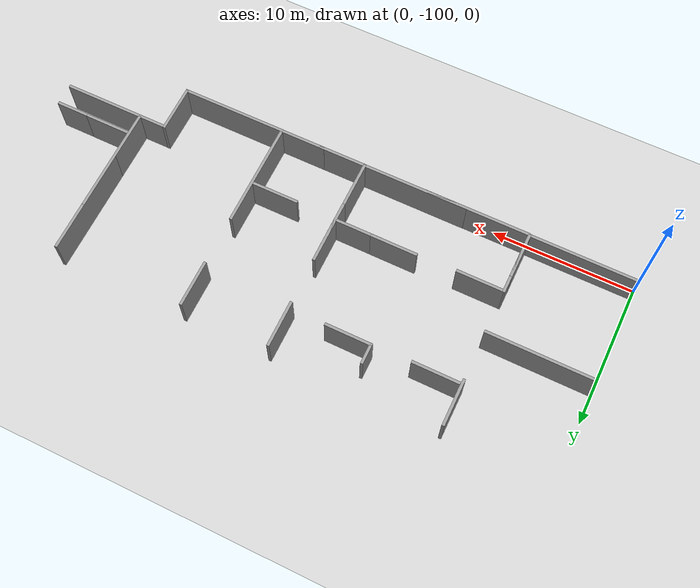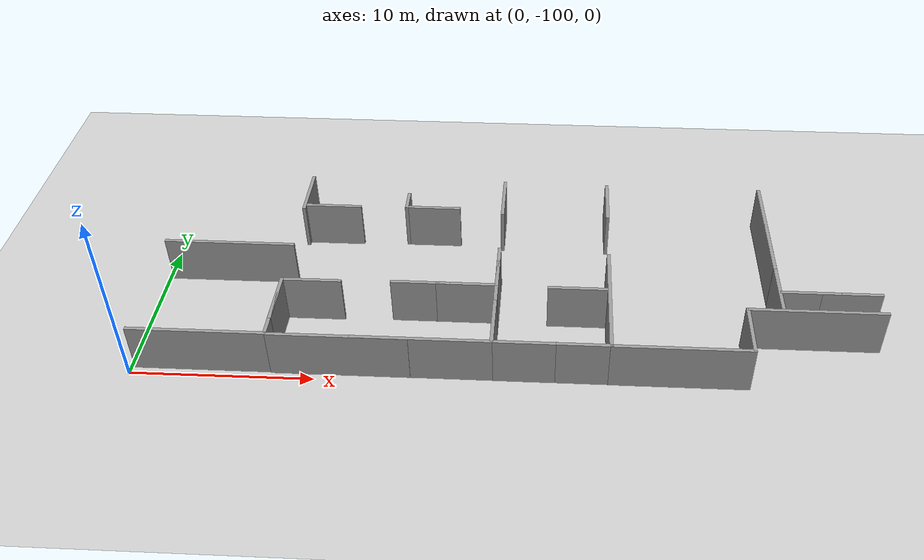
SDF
<sdf version="1.7">
 <world name="default">
  <model name="ground_plane">
   <static>1</static>
   <link name="link">
    <collision name="collision">
     <geometry><plane><normal>0 0 1</normal><size>100 100</size></plane></geometry>
     <surface>
      <contact><collide_bitmask>65535</collide_bitmask></contact>
      <friction><ode><mu>100</mu><mu2>50</mu2></ode></friction>
     </surface>
    </collision>
    <visual name="visual">
     <cast_shadows>0</cast_shadows>
     <geometry><plane><normal>0 0 1</normal><size>100 100</size></plane></geometry>
     <material>
      <script><uri>file://media/materials/scripts/gazebo.material</uri><name>Gazebo/Grey</name></script>
     </material>
    </visual>
   </link>
  </model>
  <model name="grey_wall_clone_1_clone_2_clone_clone_clone_clone_clone_clone_clone_3_clone_0_clone_0_clone_5_clone_2_clone_2_clone_clone_21_clone_clone_0_clone">
   <static>1</static>
   <link name="link">
    <pose>0 0 1.4 0 -0 0</pose>
    <collision name="collision"><geometry><box><size>7.5 0.2 2.8</size></box></geometry></collision>
    <visual name="visual">
     <cast_shadows>0</cast_shadows>
     <geometry><box><size>7.5 0.2 2.8</size></box></geometry>
     <material>
      <script>
       <uri>model://grey_wall/materials/scripts</uri>
       <uri>model://grey_wall/materials/textures</uri>
       <name>vrc/grey_wall</name>
      </script>
     </material>
    </visual>
   </link>
   <pose>3.92143 -92.0756 0 0 -0 0</pose>
  </model>
  <model name="fixed_half_clone_8_clone_clone_6_clone_0">
   <link name="link">
    <pose>0 0 1.4 0 -0 0</pose>
    <inertial>
     <mass>1</mass>
     <inertia><ixx>1</ixx><ixy>0</ixy><ixz>0</ixz><iyy>1</iyy><iyz>0</iyz><izz>1</izz></inertia>
    </inertial>
    <visual name="visual">
     <cast_shadows>0</cast_shadows>
     <geometry><box><size>3.3 0.2 2.8</size></box></geometry>
     <material>
      <script>
       <uri>model://grey_wall/materials/scripts</uri>
       <uri>model://grey_wall/materials/textures</uri>
       <name>vrc/grey_wall</name>
      </script>
      <shader type="pixel"><normal_map>__default__</normal_map></shader>
      <ambient>1 1 1 1</ambient>
      <diffuse>1 1 1 1</diffuse>
      <specular>0 0 0 1</specular>
      <emissive>0 0 0 1</emissive>
     </material>
    </visual>
    <collision name="collision">
     <geometry><box><size>3.3 0.2 2.8</size></box></geometry>
     <surface>
      <friction>
       <ode><mu>1</mu><mu2>1</mu2><fdir1>0 0 0</fdir1><slip1>0</slip1><slip2>0</slip2></ode>
       <torsional>
        <coefficient>1</coefficient>
        <patch_radius>0</patch_radius>
        <surface_radius>0</surface_radius>
        <use_patch_radius>1</use_patch_radius>
        <ode><slip>0</slip></ode>
       </torsional>
      </friction>
      <bounce><restitution_coefficient>0</restitution_coefficient><threshold>1e+06</threshold></bounce>
      <contact>
       <collide_without_contact>0</collide_without_contact>
       <collide_without_contact_bitmask>1</collide_without_contact_bitmask>
       <collide_bitmask>1</collide_bitmask>
       <ode>
        <soft_cfm>0</soft_cfm>
        <soft_erp>0.2</soft_erp>
        <kp>1e+13</kp>
        <kd>1</kd>
        <max_vel>0.01</max_vel>
        <min_depth>0</min_depth>
       </ode>
       <bullet>
        <split_impulse>1</split_impulse>
        <split_impulse_penetration_threshold>-0.01</split_impulse_penetration_threshold>
        <soft_cfm>0</soft_cfm>
        <soft_erp>0.2</soft_erp>
        <kp>1e+13</kp>
        <kd>1</kd>
       </bullet>
      </contact>
     </surface>
    </collision>
   </link>
   <static>1</static>
   <pose>7.55388 -86.9849 0 0 0 -1.5708</pose>
  </model>
  <model name="grey_wall_clone_1_clone_2_clone_clone_clone_clone_clone_clone_clone_3_clone_0_clone_0_clone_5_clone_2_clone_2_clone_clone_21_clone_clone_clone_0_clone">
   <static>1</static>
   <link name="link">
    <pose>0 0 1.4 0 -0 0</pose>
    <collision name="collision"><geometry><box><size>7.5 0.2 2.8</size></box></geometry></collision>
    <visual name="visual">
     <cast_shadows>0</cast_shadows>
     <geometry><box><size>7.5 0.2 2.8</size></box></geometry>
     <material>
      <script>
       <uri>model://grey_wall/materials/scripts</uri>
       <uri>model://grey_wall/materials/textures</uri>
       <name>vrc/grey_wall</name>
      </script>
     </material>
    </visual>
   </link>
   <pose>3.93439 -99.4849 0 0 -0 0</pose>
  </model>
  <model name="fixed_half_clone_8_clone_clone_6_clone_0_clone_0">
   <link name="link">
    <pose>0 0 1.4 0 -0 0</pose>
    <inertial>
     <mass>1</mass>
     <inertia><ixx>1</ixx><ixy>0</ixy><ixz>0</ixz><iyy>1</iyy><iyz>0</iyz><izz>1</izz></inertia>
    </inertial>
    <visual name="visual">
     <cast_shadows>0</cast_shadows>
     <geometry><box><size>3.3 0.2 2.8</size></box></geometry>
     <material>
      <script>
       <uri>model://grey_wall/materials/scripts</uri>
       <uri>model://grey_wall/materials/textures</uri>
       <name>vrc/grey_wall</name>
      </script>
      <shader type="pixel"><normal_map>__default__</normal_map></shader>
      <ambient>1 1 1 1</ambient>
      <diffuse>1 1 1 1</diffuse>
      <specular>0 0 0 1</specular>
      <emissive>0 0 0 1</emissive>
     </material>
    </visual>
    <collision name="collision">
     <geometry><box><size>3.3 0.2 2.8</size></box></geometry>
     <surface>
      <friction>
       <ode><mu>1</mu><mu2>1</mu2><fdir1>0 0 0</fdir1><slip1>0</slip1><slip2>0</slip2></ode>
       <torsional>
        <coefficient>1</coefficient>
        <patch_radius>0</patch_radius>
        <surface_radius>0</surface_radius>
        <use_patch_radius>1</use_patch_radius>
        <ode><slip>0</slip></ode>
       </torsional>
      </friction>
      <bounce><restitution_coefficient>0</restitution_coefficient><threshold>1e+06</threshold></bounce>
      <contact>
       <collide_without_contact>0</collide_without_contact>
       <collide_without_contact_bitmask>1</collide_without_contact_bitmask>
       <collide_bitmask>1</collide_bitmask>
       <ode>
        <soft_cfm>0</soft_cfm>
        <soft_erp>0.2</soft_erp>
        <kp>1e+13</kp>
        <kd>1</kd>
        <max_vel>0.01</max_vel>
        <min_depth>0</min_depth>
       </ode>
       <bullet>
        <split_impulse>1</split_impulse>
        <split_impulse_penetration_threshold>-0.01</split_impulse_penetration_threshold>
        <soft_cfm>0</soft_cfm>
        <soft_erp>0.2</soft_erp>
        <kp>1e+13</kp>
        <kd>1</kd>
       </bullet>
      </contact>
     </surface>
    </collision>
   </link>
   <static>1</static>
   <pose>7.5905 -97.9003 0 0 0 -1.5708</pose>
  </model>
  <model name="fixed_half_clone_8_clone_clone_6_clone_0_clone_1">
   <link name="link">
    <pose>0 0 1.4 0 -0 0</pose>
    <inertial>
     <mass>1</mass>
     <inertia><ixx>1</ixx><ixy>0</ixy><ixz>0</ixz><iyy>1</iyy><iyz>0</iyz><izz>1</izz></inertia>
    </inertial>
    <visual name="visual">
     <cast_shadows>0</cast_shadows>
     <geometry><box><size>3.3 0.2 2.8</size></box></geometry>
     <material>
      <script>
       <uri>model://grey_wall/materials/scripts</uri>
       <uri>model://grey_wall/materials/textures</uri>
       <name>vrc/grey_wall</name>
      </script>
      <shader type="pixel"><normal_map>__default__</normal_map></shader>
      <ambient>1 1 1 1</ambient>
      <diffuse>1 1 1 1</diffuse>
      <specular>0 0 0 1</specular>
      <emissive>0 0 0 1</emissive>
     </material>
    </visual>
    <collision name="collision">
     <geometry><box><size>3.3 0.2 2.8</size></box></geometry>
     <surface>
      <friction>
       <ode><mu>1</mu><mu2>1</mu2><fdir1>0 0 0</fdir1><slip1>0</slip1><slip2>0</slip2></ode>
       <torsional>
        <coefficient>1</coefficient>
        <patch_radius>0</patch_radius>
        <surface_radius>0</surface_radius>
        <use_patch_radius>1</use_patch_radius>
        <ode><slip>0</slip></ode>
       </torsional>
      </friction>
      <bounce><restitution_coefficient>0</restitution_coefficient><threshold>1e+06</threshold></bounce>
      <contact>
       <collide_without_contact>0</collide_without_contact>
       <collide_without_contact_bitmask>1</collide_without_contact_bitmask>
       <collide_bitmask>1</collide_bitmask>
       <ode>
        <soft_cfm>0</soft_cfm>
        <soft_erp>0.2</soft_erp>
        <kp>1e+13</kp>
        <kd>1</kd>
        <max_vel>0.01</max_vel>
        <min_depth>0</min_depth>
       </ode>
       <bullet>
        <split_impulse>1</split_impulse>
        <split_impulse_penetration_threshold>-0.01</split_impulse_penetration_threshold>
        <soft_cfm>0</soft_cfm>
        <soft_erp>0.2</soft_erp>
        <kp>1e+13</kp>
        <kd>1</kd>
       </bullet>
      </contact>
     </surface>
    </collision>
   </link>
   <static>1</static>
   <pose>7.59338 -96.6883 0 0 0 -1.5708</pose>
  </model>
  <model name="fixed_half_clone_8_clone_clone_6_clone_0_clone_clone">
   <link name="link">
    <pose>0 0 1.4 0 -0 0</pose>
    <inertial>
     <mass>1</mass>
     <inertia><ixx>1</ixx><ixy>0</ixy><ixz>0</ixz><iyy>1</iyy><iyz>0</iyz><izz>1</izz></inertia>
    </inertial>
    <visual name="visual">
     <cast_shadows>0</cast_shadows>
     <geometry><box><size>3.3 0.2 2.8</size></box></geometry>
     <material>
      <script>
       <uri>model://grey_wall/materials/scripts</uri>
       <uri>model://grey_wall/materials/textures</uri>
       <name>vrc/grey_wall</name>
      </script>
      <shader type="pixel"><normal_map>__default__</normal_map></shader>
      <ambient>1 1 1 1</ambient>
      <diffuse>1 1 1 1</diffuse>
      <specular>0 0 0 1</specular>
      <emissive>0 0 0 1</emissive>
     </material>
    </visual>
    <collision name="collision">
     <geometry><box><size>3.3 0.2 2.8</size></box></geometry>
     <surface>
      <friction>
       <ode><mu>1</mu><mu2>1</mu2><fdir1>0 0 0</fdir1><slip1>0</slip1><slip2>0</slip2></ode>
       <torsional>
        <coefficient>1</coefficient>
        <patch_radius>0</patch_radius>
        <surface_radius>0</surface_radius>
        <use_patch_radius>1</use_patch_radius>
        <ode><slip>0</slip></ode>
       </torsional>
      </friction>
      <bounce><restitution_coefficient>0</restitution_coefficient><threshold>1e+06</threshold></bounce>
      <contact>
       <collide_without_contact>0</collide_without_contact>
       <collide_without_contact_bitmask>1</collide_without_contact_bitmask>
       <collide_bitmask>1</collide_bitmask>
       <ode>
        <soft_cfm>0</soft_cfm>
        <soft_erp>0.2</soft_erp>
        <kp>1e+13</kp>
        <kd>1</kd>
        <max_vel>0.01</max_vel>
        <min_depth>0</min_depth>
       </ode>
       <bullet>
        <split_impulse>1</split_impulse>
        <split_impulse_penetration_threshold>-0.01</split_impulse_penetration_threshold>
        <soft_cfm>0</soft_cfm>
        <soft_erp>0.2</soft_erp>
        <kp>1e+13</kp>
        <kd>1</kd>
       </bullet>
      </contact>
     </surface>
    </collision>
   </link>
   <static>1</static>
   <pose>9.30921 -88.2627 0 0 -0 3.14159</pose>
  </model>
  <model name="half_wall_clone_0_clone_clone_clone_6_clone_clone_clone_0">
   <link name="link">
    <pose>0 0 1.4 0 -0 0</pose>
    <inertial>
     <mass>1</mass>
     <inertia><ixx>1</ixx><ixy>0</ixy><ixz>0</ixz><iyy>1</iyy><iyz>0</iyz><izz>1</izz></inertia>
    </inertial>
    <visual name="visual">
     <cast_shadows>0</cast_shadows>
     <geometry><box><size>1.5 0.2 2.8</size></box></geometry>
     <material>
      <script>
       <uri>model://grey_wall/materials/scripts</uri>
       <uri>model://grey_wall/materials/textures</uri>
       <name>vrc/grey_wall</name>
      </script>
      <shader type="pixel"><normal_map>__default__</normal_map></shader>
      <ambient>1 1 1 1</ambient>
      <diffuse>1 1 1 1</diffuse>
      <specular>0 0 0 1</specular>
      <emissive>0 0 0 1</emissive>
     </material>
    </visual>
    <collision name="collision">
     <geometry><box><size>1.5 0.2 2.8</size></box></geometry>
     <surface>
      <friction>
       <ode><mu>1</mu><mu2>1</mu2><fdir1>0 0 0</fdir1><slip1>0</slip1><slip2>0</slip2></ode>
       <torsional>
        <coefficient>1</coefficient>
        <patch_radius>0</patch_radius>
        <surface_radius>0</surface_radius>
        <use_patch_radius>1</use_patch_radius>
        <ode><slip>0</slip></ode>
       </torsional>
      </friction>
      <bounce><restitution_coefficient>0</restitution_coefficient><threshold>1e+06</threshold></bounce>
      <contact>
       <collide_without_contact>0</collide_without_contact>
       <collide_without_contact_bitmask>1</collide_without_contact_bitmask>
       <collide_bitmask>1</collide_bitmask>
       <ode>
        <soft_cfm>0</soft_cfm>
        <soft_erp>0.2</soft_erp>
        <kp>1e+13</kp>
        <kd>1</kd>
        <max_vel>0.01</max_vel>
        <min_depth>0</min_depth>
       </ode>
       <bullet>
        <split_impulse>1</split_impulse>
        <split_impulse_penetration_threshold>-0.01</split_impulse_penetration_threshold>
        <soft_cfm>0</soft_cfm>
        <soft_erp>0.2</soft_erp>
        <kp>1e+13</kp>
        <kd>1</kd>
       </bullet>
      </contact>
     </surface>
    </collision>
   </link>
   <static>1</static>
   <pose>13.6792 -87.5259 0 0 0 -1.5708</pose>
  </model>
  <model name="fixed_half_clone_8_clone_clone_6_clone_0_clone_clone_clone">
   <link name="link">
    <pose>0 0 1.4 0 -0 0</pose>
    <inertial>
     <mass>1</mass>
     <inertia><ixx>1</ixx><ixy>0</ixy><ixz>0</ixz><iyy>1</iyy><iyz>0</iyz><izz>1</izz></inertia>
    </inertial>
    <visual name="visual">
     <cast_shadows>0</cast_shadows>
     <geometry><box><size>3.3 0.2 2.8</size></box></geometry>
     <material>
      <script>
       <uri>model://grey_wall/materials/scripts</uri>
       <uri>model://grey_wall/materials/textures</uri>
       <name>vrc/grey_wall</name>
      </script>
      <shader type="pixel"><normal_map>__default__</normal_map></shader>
      <ambient>1 1 1 1</ambient>
      <diffuse>1 1 1 1</diffuse>
      <specular>0 0 0 1</specular>
      <emissive>0 0 0 1</emissive>
     </material>
    </visual>
    <collision name="collision">
     <geometry><box><size>3.3 0.2 2.8</size></box></geometry>
     <surface>
      <friction>
       <ode><mu>1</mu><mu2>1</mu2><fdir1>0 0 0</fdir1><slip1>0</slip1><slip2>0</slip2></ode>
       <torsional>
        <coefficient>1</coefficient>
        <patch_radius>0</patch_radius>
        <surface_radius>0</surface_radius>
        <use_patch_radius>1</use_patch_radius>
        <ode><slip>0</slip></ode>
       </torsional>
      </friction>
      <bounce><restitution_coefficient>0</restitution_coefficient><threshold>1e+06</threshold></bounce>
      <contact>
       <collide_without_contact>0</collide_without_contact>
       <collide_without_contact_bitmask>1</collide_without_contact_bitmask>
       <collide_bitmask>1</collide_bitmask>
       <ode>
        <soft_cfm>0</soft_cfm>
        <soft_erp>0.2</soft_erp>
        <kp>1e+13</kp>
        <kd>1</kd>
        <max_vel>0.01</max_vel>
        <min_depth>0</min_depth>
       </ode>
       <bullet>
        <split_impulse>1</split_impulse>
        <split_impulse_penetration_threshold>-0.01</split_impulse_penetration_threshold>
        <soft_cfm>0</soft_cfm>
        <soft_erp>0.2</soft_erp>
        <kp>1e+13</kp>
        <kd>1</kd>
       </bullet>
      </contact>
     </surface>
    </collision>
   </link>
   <static>1</static>
   <pose>15.2382 -88.1728 0 0 -0 3.14159</pose>
  </model>
  <model name="grey_wall_clone_1_clone_2_clone_clone_clone_clone_clone_clone_clone_3_clone_0_clone_0_clone_5_clone_2_clone_2_clone_clone_21_clone_clone_clone_0_clone_clone">
   <static>1</static>
   <link name="link">
    <pose>0 0 1.4 0 -0 0</pose>
    <collision name="collision"><geometry><box><size>7.5 0.2 2.8</size></box></geometry></collision>
    <visual name="visual">
     <cast_shadows>0</cast_shadows>
     <geometry><box><size>7.5 0.2 2.8</size></box></geometry>
     <material>
      <script>
       <uri>model://grey_wall/materials/scripts</uri>
       <uri>model://grey_wall/materials/textures</uri>
       <name>vrc/grey_wall</name>
      </script>
     </material>
    </visual>
   </link>
   <pose>11.3502 -99.5264 0 0 -0 0</pose>
  </model>
  <model name="grey_wall_clone_1_clone_2_clone_clone_clone_clone_clone_clone_clone_3_clone_0_clone_0_clone_5_clone_2_clone_2_clone_clone_21_clone_clone_clone_0_clone_clone_0">
   <static>1</static>
   <link name="link">
    <pose>0 0 1.4 0 -0 0</pose>
    <collision name="collision"><geometry><box><size>7.5 0.2 2.8</size></box></geometry></collision>
    <visual name="visual">
     <cast_shadows>0</cast_shadows>
     <geometry><box><size>7.5 0.2 2.8</size></box></geometry>
     <material>
      <script>
       <uri>model://grey_wall/materials/scripts</uri>
       <uri>model://grey_wall/materials/textures</uri>
       <name>vrc/grey_wall</name>
      </script>
     </material>
    </visual>
   </link>
   <pose>15.7823 -99.5173 0 0 -0 0</pose>
  </model>
  <model name="fixed_half_clone_8_clone_clone_6_clone_0_clone_clone_clone_0">
   <link name="link">
    <pose>0 0 1.4 0 -0 0</pose>
    <inertial>
     <mass>1</mass>
     <inertia><ixx>1</ixx><ixy>0</ixy><ixz>0</ixz><iyy>1</iyy><iyz>0</iyz><izz>1</izz></inertia>
    </inertial>
    <visual name="visual">
     <cast_shadows>0</cast_shadows>
     <geometry><box><size>3.3 0.2 2.8</size></box></geometry>
     <material>
      <script>
       <uri>model://grey_wall/materials/scripts</uri>
       <uri>model://grey_wall/materials/textures</uri>
       <name>vrc/grey_wall</name>
      </script>
      <shader type="pixel"><normal_map>__default__</normal_map></shader>
      <ambient>1 1 1 1</ambient>
      <diffuse>1 1 1 1</diffuse>
      <specular>0 0 0 1</specular>
      <emissive>0 0 0 1</emissive>
     </material>
    </visual>
    <collision name="collision">
     <geometry><box><size>3.3 0.2 2.8</size></box></geometry>
     <surface>
      <friction>
       <ode><mu>1</mu><mu2>1</mu2><fdir1>0 0 0</fdir1><slip1>0</slip1><slip2>0</slip2></ode>
       <torsional>
        <coefficient>1</coefficient>
        <patch_radius>0</patch_radius>
        <surface_radius>0</surface_radius>
        <use_patch_radius>1</use_patch_radius>
        <ode><slip>0</slip></ode>
       </torsional>
      </friction>
      <bounce><restitution_coefficient>0</restitution_coefficient><threshold>1e+06</threshold></bounce>
      <contact>
       <collide_without_contact>0</collide_without_contact>
       <collide_without_contact_bitmask>1</collide_without_contact_bitmask>
       <collide_bitmask>1</collide_bitmask>
       <ode>
        <soft_cfm>0</soft_cfm>
        <soft_erp>0.2</soft_erp>
        <kp>1e+13</kp>
        <kd>1</kd>
        <max_vel>0.01</max_vel>
        <min_depth>0</min_depth>
       </ode>
       <bullet>
        <split_impulse>1</split_impulse>
        <split_impulse_penetration_threshold>-0.01</split_impulse_penetration_threshold>
        <soft_cfm>0</soft_cfm>
        <soft_erp>0.2</soft_erp>
        <kp>1e+13</kp>
        <kd>1</kd>
       </bullet>
      </contact>
     </surface>
    </collision>
   </link>
   <static>1</static>
   <pose>9.25178 -95.1293 0 0 -0 3.14159</pose>
  </model>
  <model name="fixed_half_clone_8_clone_clone_6_clone_0_clone_clone_clone_1">
   <link name="link">
    <pose>0 0 1.4 0 -0 0</pose>
    <inertial>
     <mass>1</mass>
     <inertia><ixx>1</ixx><ixy>0</ixy><ixz>0</ixz><iyy>1</iyy><iyz>0</iyz><izz>1</izz></inertia>
    </inertial>
    <visual name="visual">
     <cast_shadows>0</cast_shadows>
     <geometry><box><size>3.3 0.2 2.8</size></box></geometry>
     <material>
      <script>
       <uri>model://grey_wall/materials/scripts</uri>
       <uri>model://grey_wall/materials/textures</uri>
       <name>vrc/grey_wall</name>
      </script>
      <shader type="pixel"><normal_map>__default__</normal_map></shader>
      <ambient>1 1 1 1</ambient>
      <diffuse>1 1 1 1</diffuse>
      <specular>0 0 0 1</specular>
      <emissive>0 0 0 1</emissive>
     </material>
    </visual>
    <collision name="collision">
     <geometry><box><size>3.3 0.2 2.8</size></box></geometry>
     <surface>
      <friction>
       <ode><mu>1</mu><mu2>1</mu2><fdir1>0 0 0</fdir1><slip1>0</slip1><slip2>0</slip2></ode>
       <torsional>
        <coefficient>1</coefficient>
        <patch_radius>0</patch_radius>
        <surface_radius>0</surface_radius>
        <use_patch_radius>1</use_patch_radius>
        <ode><slip>0</slip></ode>
       </torsional>
      </friction>
      <bounce><restitution_coefficient>0</restitution_coefficient><threshold>1e+06</threshold></bounce>
      <contact>
       <collide_without_contact>0</collide_without_contact>
       <collide_without_contact_bitmask>1</collide_without_contact_bitmask>
       <collide_bitmask>1</collide_bitmask>
       <ode>
        <soft_cfm>0</soft_cfm>
        <soft_erp>0.2</soft_erp>
        <kp>1e+13</kp>
        <kd>1</kd>
        <max_vel>0.01</max_vel>
        <min_depth>0</min_depth>
       </ode>
       <bullet>
        <split_impulse>1</split_impulse>
        <split_impulse_penetration_threshold>-0.01</split_impulse_penetration_threshold>
        <soft_cfm>0</soft_cfm>
        <soft_erp>0.2</soft_erp>
        <kp>1e+13</kp>
        <kd>1</kd>
       </bullet>
      </contact>
     </surface>
    </collision>
   </link>
   <static>1</static>
   <pose>17.7611 -95.037 0 0 -0 3.14159</pose>
  </model>
  <model name="fixed_half_clone_8_clone_clone_6_clone_0_clone_clone_clone_2">
   <link name="link">
    <pose>0 0 1.4 0 -0 0</pose>
    <inertial>
     <mass>1</mass>
     <inertia><ixx>1</ixx><ixy>0</ixy><ixz>0</ixz><iyy>1</iyy><iyz>0</iyz><izz>1</izz></inertia>
    </inertial>
    <visual name="visual">
     <cast_shadows>0</cast_shadows>
     <geometry><box><size>3.3 0.2 2.8</size></box></geometry>
     <material>
      <script>
       <uri>model://grey_wall/materials/scripts</uri>
       <uri>model://grey_wall/materials/textures</uri>
       <name>vrc/grey_wall</name>
      </script>
      <shader type="pixel"><normal_map>__default__</normal_map></shader>
      <ambient>1 1 1 1</ambient>
      <diffuse>1 1 1 1</diffuse>
      <specular>0 0 0 1</specular>
      <emissive>0 0 0 1</emissive>
     </material>
    </visual>
    <collision name="collision">
     <geometry><box><size>3.3 0.2 2.8</size></box></geometry>
     <surface>
      <friction>
       <ode><mu>1</mu><mu2>1</mu2><fdir1>0 0 0</fdir1><slip1>0</slip1><slip2>0</slip2></ode>
       <torsional>
        <coefficient>1</coefficient>
        <patch_radius>0</patch_radius>
        <surface_radius>0</surface_radius>
        <use_patch_radius>1</use_patch_radius>
        <ode><slip>0</slip></ode>
       </torsional>
      </friction>
      <bounce><restitution_coefficient>0</restitution_coefficient><threshold>1e+06</threshold></bounce>
      <contact>
       <collide_without_contact>0</collide_without_contact>
       <collide_without_contact_bitmask>1</collide_without_contact_bitmask>
       <collide_bitmask>1</collide_bitmask>
       <ode>
        <soft_cfm>0</soft_cfm>
        <soft_erp>0.2</soft_erp>
        <kp>1e+13</kp>
        <kd>1</kd>
        <max_vel>0.01</max_vel>
        <min_depth>0</min_depth>
       </ode>
       <bullet>
        <split_impulse>1</split_impulse>
        <split_impulse_penetration_threshold>-0.01</split_impulse_penetration_threshold>
        <soft_cfm>0</soft_cfm>
        <soft_erp>0.2</soft_erp>
        <kp>1e+13</kp>
        <kd>1</kd>
       </bullet>
      </contact>
     </surface>
    </collision>
   </link>
   <static>1</static>
   <pose>15.247 -95.0329 0 0 -0 3.14159</pose>
  </model>
  <model name="fixed_half_clone_8_clone_clone_6_clone_0_clone_2">
   <link name="link">
    <pose>0 0 1.4 0 -0 0</pose>
    <inertial>
     <mass>1</mass>
     <inertia><ixx>1</ixx><ixy>0</ixy><ixz>0</ixz><iyy>1</iyy><iyz>0</iyz><izz>1</izz></inertia>
    </inertial>
    <visual name="visual">
     <cast_shadows>0</cast_shadows>
     <geometry><box><size>3.3 0.2 2.8</size></box></geometry>
     <material>
      <script>
       <uri>model://grey_wall/materials/scripts</uri>
       <uri>model://grey_wall/materials/textures</uri>
       <name>vrc/grey_wall</name>
      </script>
      <shader type="pixel"><normal_map>__default__</normal_map></shader>
      <ambient>1 1 1 1</ambient>
      <diffuse>1 1 1 1</diffuse>
      <specular>0 0 0 1</specular>
      <emissive>0 0 0 1</emissive>
     </material>
    </visual>
    <collision name="collision">
     <geometry><box><size>3.3 0.2 2.8</size></box></geometry>
     <surface>
      <friction>
       <ode><mu>1</mu><mu2>1</mu2><fdir1>0 0 0</fdir1><slip1>0</slip1><slip2>0</slip2></ode>
       <torsional>
        <coefficient>1</coefficient>
        <patch_radius>0</patch_radius>
        <surface_radius>0</surface_radius>
        <use_patch_radius>1</use_patch_radius>
        <ode><slip>0</slip></ode>
       </torsional>
      </friction>
      <bounce><restitution_coefficient>0</restitution_coefficient><threshold>1e+06</threshold></bounce>
      <contact>
       <collide_without_contact>0</collide_without_contact>
       <collide_without_contact_bitmask>1</collide_without_contact_bitmask>
       <collide_bitmask>1</collide_bitmask>
       <ode>
        <soft_cfm>0</soft_cfm>
        <soft_erp>0.2</soft_erp>
        <kp>1e+13</kp>
        <kd>1</kd>
        <max_vel>0.01</max_vel>
        <min_depth>0</min_depth>
       </ode>
       <bullet>
        <split_impulse>1</split_impulse>
        <split_impulse_penetration_threshold>-0.01</split_impulse_penetration_threshold>
        <soft_cfm>0</soft_cfm>
        <soft_erp>0.2</soft_erp>
        <kp>1e+13</kp>
        <kd>1</kd>
       </bullet>
      </contact>
     </surface>
    </collision>
   </link>
   <static>1</static>
   <pose>19.4366 -86.9608 0 0 0 -1.5708</pose>
  </model>
  <model name="fixed_half_clone_8_clone_clone_6_clone_0_clone_3">
   <link name="link">
    <pose>0 0 1.4 0 -0 0</pose>
    <inertial>
     <mass>1</mass>
     <inertia><ixx>1</ixx><ixy>0</ixy><ixz>0</ixz><iyy>1</iyy><iyz>0</iyz><izz>1</izz></inertia>
    </inertial>
    <visual name="visual">
     <cast_shadows>0</cast_shadows>
     <geometry><box><size>3.3 0.2 2.8</size></box></geometry>
     <material>
      <script>
       <uri>model://grey_wall/materials/scripts</uri>
       <uri>model://grey_wall/materials/textures</uri>
       <name>vrc/grey_wall</name>
      </script>
      <shader type="pixel"><normal_map>__default__</normal_map></shader>
      <ambient>1 1 1 1</ambient>
      <diffuse>1 1 1 1</diffuse>
      <specular>0 0 0 1</specular>
      <emissive>0 0 0 1</emissive>
     </material>
    </visual>
    <collision name="collision">
     <geometry><box><size>3.3 0.2 2.8</size></box></geometry>
     <surface>
      <friction>
       <ode><mu>1</mu><mu2>1</mu2><fdir1>0 0 0</fdir1><slip1>0</slip1><slip2>0</slip2></ode>
       <torsional>
        <coefficient>1</coefficient>
        <patch_radius>0</patch_radius>
        <surface_radius>0</surface_radius>
        <use_patch_radius>1</use_patch_radius>
        <ode><slip>0</slip></ode>
       </torsional>
      </friction>
      <bounce><restitution_coefficient>0</restitution_coefficient><threshold>1e+06</threshold></bounce>
      <contact>
       <collide_without_contact>0</collide_without_contact>
       <collide_without_contact_bitmask>1</collide_without_contact_bitmask>
       <collide_bitmask>1</collide_bitmask>
       <ode>
        <soft_cfm>0</soft_cfm>
        <soft_erp>0.2</soft_erp>
        <kp>1e+13</kp>
        <kd>1</kd>
        <max_vel>0.01</max_vel>
        <min_depth>0</min_depth>
       </ode>
       <bullet>
        <split_impulse>1</split_impulse>
        <split_impulse_penetration_threshold>-0.01</split_impulse_penetration_threshold>
        <soft_cfm>0</soft_cfm>
        <soft_erp>0.2</soft_erp>
        <kp>1e+13</kp>
        <kd>1</kd>
       </bullet>
      </contact>
     </surface>
    </collision>
   </link>
   <static>1</static>
   <pose>19.4559 -97.9358 0 0 0 -1.5708</pose>
  </model>
  <model name="fixed_half_clone_8_clone_clone_6_clone_0_clone_4">
   <link name="link">
    <pose>0 0 1.4 0 -0 0</pose>
    <inertial>
     <mass>1</mass>
     <inertia><ixx>1</ixx><ixy>0</ixy><ixz>0</ixz><iyy>1</iyy><iyz>0</iyz><izz>1</izz></inertia>
    </inertial>
    <visual name="visual">
     <cast_shadows>0</cast_shadows>
     <geometry><box><size>3.3 0.2 2.8</size></box></geometry>
     <material>
      <script>
       <uri>model://grey_wall/materials/scripts</uri>
       <uri>model://grey_wall/materials/textures</uri>
       <name>vrc/grey_wall</name>
      </script>
      <shader type="pixel"><normal_map>__default__</normal_map></shader>
      <ambient>1 1 1 1</ambient>
      <diffuse>1 1 1 1</diffuse>
      <specular>0 0 0 1</specular>
      <emissive>0 0 0 1</emissive>
     </material>
    </visual>
    <collision name="collision">
     <geometry><box><size>3.3 0.2 2.8</size></box></geometry>
     <surface>
      <friction>
       <ode><mu>1</mu><mu2>1</mu2><fdir1>0 0 0</fdir1><slip1>0</slip1><slip2>0</slip2></ode>
       <torsional>
        <coefficient>1</coefficient>
        <patch_radius>0</patch_radius>
        <surface_radius>0</surface_radius>
        <use_patch_radius>1</use_patch_radius>
        <ode><slip>0</slip></ode>
       </torsional>
      </friction>
      <bounce><restitution_coefficient>0</restitution_coefficient><threshold>1e+06</threshold></bounce>
      <contact>
       <collide_without_contact>0</collide_without_contact>
       <collide_without_contact_bitmask>1</collide_without_contact_bitmask>
       <collide_bitmask>1</collide_bitmask>
       <ode>
        <soft_cfm>0</soft_cfm>
        <soft_erp>0.2</soft_erp>
        <kp>1e+13</kp>
        <kd>1</kd>
        <max_vel>0.01</max_vel>
        <min_depth>0</min_depth>
       </ode>
       <bullet>
        <split_impulse>1</split_impulse>
        <split_impulse_penetration_threshold>-0.01</split_impulse_penetration_threshold>
        <soft_cfm>0</soft_cfm>
        <soft_erp>0.2</soft_erp>
        <kp>1e+13</kp>
        <kd>1</kd>
       </bullet>
      </contact>
     </surface>
    </collision>
   </link>
   <static>1</static>
   <pose>19.4615 -94.6614 0 0 0 -1.5708</pose>
  </model>
  <model name="fixed_half_clone_8_clone_clone_6_clone_0_clone_5">
   <link name="link">
    <pose>0 0 1.4 0 -0 0</pose>
    <inertial>
     <mass>1</mass>
     <inertia><ixx>1</ixx><ixy>0</ixy><ixz>0</ixz><iyy>1</iyy><iyz>0</iyz><izz>1</izz></inertia>
    </inertial>
    <visual name="visual">
     <cast_shadows>0</cast_shadows>
     <geometry><box><size>3.3 0.2 2.8</size></box></geometry>
     <material>
      <script>
       <uri>model://grey_wall/materials/scripts</uri>
       <uri>model://grey_wall/materials/textures</uri>
       <name>vrc/grey_wall</name>
      </script>
      <shader type="pixel"><normal_map>__default__</normal_map></shader>
      <ambient>1 1 1 1</ambient>
      <diffuse>1 1 1 1</diffuse>
      <specular>0 0 0 1</specular>
      <emissive>0 0 0 1</emissive>
     </material>
    </visual>
    <collision name="collision">
     <geometry><box><size>3.3 0.2 2.8</size></box></geometry>
     <surface>
      <friction>
       <ode><mu>1</mu><mu2>1</mu2><fdir1>0 0 0</fdir1><slip1>0</slip1><slip2>0</slip2></ode>
       <torsional>
        <coefficient>1</coefficient>
        <patch_radius>0</patch_radius>
        <surface_radius>0</surface_radius>
        <use_patch_radius>1</use_patch_radius>
        <ode><slip>0</slip></ode>
       </torsional>
      </friction>
      <bounce><restitution_coefficient>0</restitution_coefficient><threshold>1e+06</threshold></bounce>
      <contact>
       <collide_without_contact>0</collide_without_contact>
       <collide_without_contact_bitmask>1</collide_without_contact_bitmask>
       <collide_bitmask>1</collide_bitmask>
       <ode>
        <soft_cfm>0</soft_cfm>
        <soft_erp>0.2</soft_erp>
        <kp>1e+13</kp>
        <kd>1</kd>
        <max_vel>0.01</max_vel>
        <min_depth>0</min_depth>
       </ode>
       <bullet>
        <split_impulse>1</split_impulse>
        <split_impulse_penetration_threshold>-0.01</split_impulse_penetration_threshold>
        <soft_cfm>0</soft_cfm>
        <soft_erp>0.2</soft_erp>
        <kp>1e+13</kp>
        <kd>1</kd>
       </bullet>
      </contact>
     </surface>
    </collision>
   </link>
   <static>1</static>
   <pose>19.4581 -93.4551 0 0 0 -1.5708</pose>
  </model>
  <model name="fixed_half_clone_8_clone_clone_6_clone_0_clone_clone_clone_1_clone">
   <link name="link">
    <pose>0 0 1.4 0 -0 0</pose>
    <inertial>
     <mass>1</mass>
     <inertia><ixx>1</ixx><ixy>0</ixy><ixz>0</ixz><iyy>1</iyy><iyz>0</iyz><izz>1</izz></inertia>
    </inertial>
    <visual name="visual">
     <cast_shadows>0</cast_shadows>
     <geometry><box><size>3.3 0.2 2.8</size></box></geometry>
     <material>
      <script>
       <uri>model://grey_wall/materials/scripts</uri>
       <uri>model://grey_wall/materials/textures</uri>
       <name>vrc/grey_wall</name>
      </script>
      <shader type="pixel"><normal_map>__default__</normal_map></shader>
      <ambient>1 1 1 1</ambient>
      <diffuse>1 1 1 1</diffuse>
      <specular>0 0 0 1</specular>
      <emissive>0 0 0 1</emissive>
     </material>
    </visual>
    <collision name="collision">
     <geometry><box><size>3.3 0.2 2.8</size></box></geometry>
     <surface>
      <friction>
       <ode><mu>1</mu><mu2>1</mu2><fdir1>0 0 0</fdir1><slip1>0</slip1><slip2>0</slip2></ode>
       <torsional>
        <coefficient>1</coefficient>
        <patch_radius>0</patch_radius>
        <surface_radius>0</surface_radius>
        <use_patch_radius>1</use_patch_radius>
        <ode><slip>0</slip></ode>
       </torsional>
      </friction>
      <bounce><restitution_coefficient>0</restitution_coefficient><threshold>1e+06</threshold></bounce>
      <contact>
       <collide_without_contact>0</collide_without_contact>
       <collide_without_contact_bitmask>1</collide_without_contact_bitmask>
       <collide_bitmask>1</collide_bitmask>
       <ode>
        <soft_cfm>0</soft_cfm>
        <soft_erp>0.2</soft_erp>
        <kp>1e+13</kp>
        <kd>1</kd>
        <max_vel>0.01</max_vel>
        <min_depth>0</min_depth>
       </ode>
       <bullet>
        <split_impulse>1</split_impulse>
        <split_impulse_penetration_threshold>-0.01</split_impulse_penetration_threshold>
        <soft_cfm>0</soft_cfm>
        <soft_erp>0.2</soft_erp>
        <kp>1e+13</kp>
        <kd>1</kd>
       </bullet>
      </contact>
     </surface>
    </collision>
   </link>
   <static>1</static>
   <pose>21.1482 -99.5243 0 0 -0 3.14159</pose>
  </model>
  <model name="fixed_half_clone_8_clone_clone_6_clone_0_clone_clone_clone_1_clone_0">
   <link name="link">
    <pose>0 0 1.4 0 -0 0</pose>
    <inertial>
     <mass>1</mass>
     <inertia><ixx>1</ixx><ixy>0</ixy><ixz>0</ixz><iyy>1</iyy><iyz>0</iyz><izz>1</izz></inertia>
    </inertial>
    <visual name="visual">
     <cast_shadows>0</cast_shadows>
     <geometry><box><size>3.3 0.2 2.8</size></box></geometry>
     <material>
      <script>
       <uri>model://grey_wall/materials/scripts</uri>
       <uri>model://grey_wall/materials/textures</uri>
       <name>vrc/grey_wall</name>
      </script>
      <shader type="pixel"><normal_map>__default__</normal_map></shader>
      <ambient>1 1 1 1</ambient>
      <diffuse>1 1 1 1</diffuse>
      <specular>0 0 0 1</specular>
      <emissive>0 0 0 1</emissive>
     </material>
    </visual>
    <collision name="collision">
     <geometry><box><size>3.3 0.2 2.8</size></box></geometry>
     <surface>
      <friction>
       <ode><mu>1</mu><mu2>1</mu2><fdir1>0 0 0</fdir1><slip1>0</slip1><slip2>0</slip2></ode>
       <torsional>
        <coefficient>1</coefficient>
        <patch_radius>0</patch_radius>
        <surface_radius>0</surface_radius>
        <use_patch_radius>1</use_patch_radius>
        <ode><slip>0</slip></ode>
       </torsional>
      </friction>
      <bounce><restitution_coefficient>0</restitution_coefficient><threshold>1e+06</threshold></bounce>
      <contact>
       <collide_without_contact>0</collide_without_contact>
       <collide_without_contact_bitmask>1</collide_without_contact_bitmask>
       <collide_bitmask>1</collide_bitmask>
       <ode>
        <soft_cfm>0</soft_cfm>
        <soft_erp>0.2</soft_erp>
        <kp>1e+13</kp>
        <kd>1</kd>
        <max_vel>0.01</max_vel>
        <min_depth>0</min_depth>
       </ode>
       <bullet>
        <split_impulse>1</split_impulse>
        <split_impulse_penetration_threshold>-0.01</split_impulse_penetration_threshold>
        <soft_cfm>0</soft_cfm>
        <soft_erp>0.2</soft_erp>
        <kp>1e+13</kp>
        <kd>1</kd>
       </bullet>
      </contact>
     </surface>
    </collision>
   </link>
   <static>1</static>
   <pose>24.0955 -99.5213 0 0 -0 3.14159</pose>
  </model>
  <model name="grey_wall_clone_2_clone_clone_clone_0_clone_1_clone_3_clone_clone_0_clone">
   <static>1</static>
   <link name="link">
    <pose>0 0 1.4 0 -0 0</pose>
    <collision name="collision"><geometry><box><size>7.5 0.2 2.8</size></box></geometry></collision>
    <visual name="visual">
     <cast_shadows>0</cast_shadows>
     <geometry><box><size>7.5 0.2 2.8</size></box></geometry>
     <material>
      <script>
       <uri>model://grey_wall/materials/scripts</uri>
       <uri>model://grey_wall/materials/textures</uri>
       <name>vrc/grey_wall</name>
      </script>
     </material>
    </visual>
   </link>
   <pose>25.6537 -95.8336 0 0 0 -1.5708</pose>
  </model>
  <model name="fixed_half_clone_8_clone_clone_6_clone_0_clone_clone_clone_1_clone_1">
   <link name="link">
    <pose>0 0 1.4 0 -0 0</pose>
    <inertial>
     <mass>1</mass>
     <inertia><ixx>1</ixx><ixy>0</ixy><ixz>0</ixz><iyy>1</iyy><iyz>0</iyz><izz>1</izz></inertia>
    </inertial>
    <visual name="visual">
     <cast_shadows>0</cast_shadows>
     <geometry><box><size>3.3 0.2 2.8</size></box></geometry>
     <material>
      <script>
       <uri>model://grey_wall/materials/scripts</uri>
       <uri>model://grey_wall/materials/textures</uri>
       <name>vrc/grey_wall</name>
      </script>
      <shader type="pixel"><normal_map>__default__</normal_map></shader>
      <ambient>1 1 1 1</ambient>
      <diffuse>1 1 1 1</diffuse>
      <specular>0 0 0 1</specular>
      <emissive>0 0 0 1</emissive>
     </material>
    </visual>
    <collision name="collision">
     <geometry><box><size>3.3 0.2 2.8</size></box></geometry>
     <surface>
      <friction>
       <ode><mu>1</mu><mu2>1</mu2><fdir1>0 0 0</fdir1><slip1>0</slip1><slip2>0</slip2></ode>
       <torsional>
        <coefficient>1</coefficient>
        <patch_radius>0</patch_radius>
        <surface_radius>0</surface_radius>
        <use_patch_radius>1</use_patch_radius>
        <ode><slip>0</slip></ode>
       </torsional>
      </friction>
      <bounce><restitution_coefficient>0</restitution_coefficient><threshold>1e+06</threshold></bounce>
      <contact>
       <collide_without_contact>0</collide_without_contact>
       <collide_without_contact_bitmask>1</collide_without_contact_bitmask>
       <collide_bitmask>1</collide_bitmask>
       <ode>
        <soft_cfm>0</soft_cfm>
        <soft_erp>0.2</soft_erp>
        <kp>1e+13</kp>
        <kd>1</kd>
        <max_vel>0.01</max_vel>
        <min_depth>0</min_depth>
       </ode>
       <bullet>
        <split_impulse>1</split_impulse>
        <split_impulse_penetration_threshold>-0.01</split_impulse_penetration_threshold>
        <soft_cfm>0</soft_cfm>
        <soft_erp>0.2</soft_erp>
        <kp>1e+13</kp>
        <kd>1</kd>
       </bullet>
      </contact>
     </surface>
    </collision>
   </link>
   <static>1</static>
   <pose>23.9193 -95.1144 0 0 -0 3.14159</pose>
  </model>
  <model name="grey_wall_clone_1_clone_2_clone_clone_clone_clone_clone_clone_clone_3_clone_0_clone_0_clone_5_clone_2_clone_2_clone_clone_21_clone_clone_clone_0_clone_clone_0_clone_clone">
   <static>1</static>
   <link name="link">
    <pose>0 0 1.4 0 -0 0</pose>
    <collision name="collision"><geometry><box><size>7.5 0.2 2.8</size></box></geometry></collision>
    <visual name="visual">
     <cast_shadows>0</cast_shadows>
     <geometry><box><size>7.5 0.2 2.8</size></box></geometry>
     <material>
      <script>
       <uri>model://grey_wall/materials/scripts</uri>
       <uri>model://grey_wall/materials/textures</uri>
       <name>vrc/grey_wall</name>
      </script>
     </material>
    </visual>
   </link>
   <pose>29.3471 -99.533 0 0 -0 0</pose>
  </model>
  <model name="fixed_half_clone_8_clone_clone_6_clone_0_clone_2_clone">
   <link name="link">
    <pose>0 0 1.4 0 -0 0</pose>
    <inertial>
     <mass>1</mass>
     <inertia><ixx>1</ixx><ixy>0</ixy><ixz>0</ixz><iyy>1</iyy><iyz>0</iyz><izz>1</izz></inertia>
    </inertial>
    <visual name="visual">
     <cast_shadows>0</cast_shadows>
     <geometry><box><size>3.3 0.2 2.8</size></box></geometry>
     <material>
      <script>
       <uri>model://grey_wall/materials/scripts</uri>
       <uri>model://grey_wall/materials/textures</uri>
       <name>vrc/grey_wall</name>
      </script>
      <shader type="pixel"><normal_map>__default__</normal_map></shader>
      <ambient>1 1 1 1</ambient>
      <diffuse>1 1 1 1</diffuse>
      <specular>0 0 0 1</specular>
      <emissive>0 0 0 1</emissive>
     </material>
    </visual>
    <collision name="collision">
     <geometry><box><size>3.3 0.2 2.8</size></box></geometry>
     <surface>
      <friction>
       <ode><mu>1</mu><mu2>1</mu2><fdir1>0 0 0</fdir1><slip1>0</slip1><slip2>0</slip2></ode>
       <torsional>
        <coefficient>1</coefficient>
        <patch_radius>0</patch_radius>
        <surface_radius>0</surface_radius>
        <use_patch_radius>1</use_patch_radius>
        <ode><slip>0</slip></ode>
       </torsional>
      </friction>
      <bounce><restitution_coefficient>0</restitution_coefficient><threshold>1e+06</threshold></bounce>
      <contact>
       <collide_without_contact>0</collide_without_contact>
       <collide_without_contact_bitmask>1</collide_without_contact_bitmask>
       <collide_bitmask>1</collide_bitmask>
       <ode>
        <soft_cfm>0</soft_cfm>
        <soft_erp>0.2</soft_erp>
        <kp>1e+13</kp>
        <kd>1</kd>
        <max_vel>0.01</max_vel>
        <min_depth>0</min_depth>
       </ode>
       <bullet>
        <split_impulse>1</split_impulse>
        <split_impulse_penetration_threshold>-0.01</split_impulse_penetration_threshold>
        <soft_cfm>0</soft_cfm>
        <soft_erp>0.2</soft_erp>
        <kp>1e+13</kp>
        <kd>1</kd>
       </bullet>
      </contact>
     </surface>
    </collision>
   </link>
   <static>1</static>
   <pose>32.9996 -97.9019 0 0 0 -1.5708</pose>
  </model>
  <model name="grey_wall_clone_1_clone_2_clone_clone_clone_clone_clone_clone_clone_3_clone_0_clone_0_clone_5_clone_2_clone_2_clone_clone_17_clone">
   <static>1</static>
   <link name="link">
    <pose>0 0 1.4 0 -0 0</pose>
    <collision name="collision"><geometry><box><size>7.5 0.2 2.8</size></box></geometry></collision>
    <visual name="visual">
     <cast_shadows>0</cast_shadows>
     <geometry><box><size>7.5 0.2 2.8</size></box></geometry>
     <material>
      <script>
       <uri>model://grey_wall/materials/scripts</uri>
       <uri>model://grey_wall/materials/textures</uri>
       <name>vrc/grey_wall</name>
      </script>
     </material>
    </visual>
   </link>
   <pose>36.7561 -96.3559 0 0 -0 0</pose>
  </model>
  <model name="grey_wall_clone_2_clone_clone_clone_0_clone_1_clone_3_clone_clone_0_clone_0_clone">
   <static>1</static>
   <link name="link">
    <pose>0 0 1.4 0 -0 0</pose>
    <collision name="collision"><geometry><box><size>7.5 0.2 2.8</size></box></geometry></collision>
    <visual name="visual">
     <cast_shadows>0</cast_shadows>
     <geometry><box><size>7.5 0.2 2.8</size></box></geometry>
     <material>
      <script>
       <uri>model://grey_wall/materials/scripts</uri>
       <uri>model://grey_wall/materials/textures</uri>
       <name>vrc/grey_wall</name>
      </script>
     </material>
    </visual>
   </link>
   <pose>34.9013 -92.583 0 0 0 -1.5708</pose>
  </model>
  <model name="grey_wall_clone_2_clone_clone_clone_0_clone_1_clone_3_clone_clone_0_clone_0_clone_0">
   <static>1</static>
   <link name="link">
    <pose>0 0 1.4 0 -0 0</pose>
    <collision name="collision"><geometry><box><size>7.5 0.2 2.8</size></box></geometry></collision>
    <visual name="visual">
     <cast_shadows>0</cast_shadows>
     <geometry><box><size>7.5 0.2 2.8</size></box></geometry>
     <material>
      <script>
       <uri>model://grey_wall/materials/scripts</uri>
       <uri>model://grey_wall/materials/textures</uri>
       <name>vrc/grey_wall</name>
      </script>
     </material>
    </visual>
   </link>
   <pose>34.8988 -89.157 0 0 0 -1.5708</pose>
  </model>
  <model name="fixed_half_clone_8_clone_clone_6_clone_0_clone_2_clone_0">
   <link name="link">
    <pose>0 0 1.4 0 -0 0</pose>
    <inertial>
     <mass>1</mass>
     <inertia><ixx>1</ixx><ixy>0</ixy><ixz>0</ixz><iyy>1</iyy><iyz>0</iyz><izz>1</izz></inertia>
    </inertial>
    <visual name="visual">
     <cast_shadows>0</cast_shadows>
     <geometry><box><size>3.3 0.2 2.8</size></box></geometry>
     <material>
      <script>
       <uri>model://grey_wall/materials/scripts</uri>
       <uri>model://grey_wall/materials/textures</uri>
       <name>vrc/grey_wall</name>
      </script>
      <shader type="pixel"><normal_map>__default__</normal_map></shader>
      <ambient>1 1 1 1</ambient>
      <diffuse>1 1 1 1</diffuse>
      <specular>0 0 0 1</specular>
      <emissive>0 0 0 1</emissive>
     </material>
    </visual>
    <collision name="collision">
     <geometry><box><size>3.3 0.2 2.8</size></box></geometry>
     <surface>
      <friction>
       <ode><mu>1</mu><mu2>1</mu2><fdir1>0 0 0</fdir1><slip1>0</slip1><slip2>0</slip2></ode>
       <torsional>
        <coefficient>1</coefficient>
        <patch_radius>0</patch_radius>
        <surface_radius>0</surface_radius>
        <use_patch_radius>1</use_patch_radius>
        <ode><slip>0</slip></ode>
       </torsional>
      </friction>
      <bounce><restitution_coefficient>0</restitution_coefficient><threshold>1e+06</threshold></bounce>
      <contact>
       <collide_without_contact>0</collide_without_contact>
       <collide_without_contact_bitmask>1</collide_without_contact_bitmask>
       <collide_bitmask>1</collide_bitmask>
       <ode>
        <soft_cfm>0</soft_cfm>
        <soft_erp>0.2</soft_erp>
        <kp>1e+13</kp>
        <kd>1</kd>
        <max_vel>0.01</max_vel>
        <min_depth>0</min_depth>
       </ode>
       <bullet>
        <split_impulse>1</split_impulse>
        <split_impulse_penetration_threshold>-0.01</split_impulse_penetration_threshold>
        <soft_cfm>0</soft_cfm>
        <soft_erp>0.2</soft_erp>
        <kp>1e+13</kp>
        <kd>1</kd>
       </bullet>
      </contact>
     </surface>
    </collision>
   </link>
   <static>1</static>
   <pose>25.6683 -87.0181 0 0 0 -1.5708</pose>
  </model>
  <model name="fixed_half_clone_8_clone_clone_6_clone_0_clone_clone_clone_1_clone_1_clone">
   <link name="link">
    <pose>0 0 1.4 0 -0 0</pose>
    <inertial>
     <mass>1</mass>
     <inertia><ixx>1</ixx><ixy>0</ixy><ixz>0</ixz><iyy>1</iyy><iyz>0</iyz><izz>1</izz></inertia>
    </inertial>
    <visual name="visual">
     <cast_shadows>0</cast_shadows>
     <geometry><box><size>3.3 0.2 2.8</size></box></geometry>
     <material>
      <script>
       <uri>model://grey_wall/materials/scripts</uri>
       <uri>model://grey_wall/materials/textures</uri>
       <name>vrc/grey_wall</name>
      </script>
      <shader type="pixel"><normal_map>__default__</normal_map></shader>
      <ambient>1 1 1 1</ambient>
      <diffuse>1 1 1 1</diffuse>
      <specular>0 0 0 1</specular>
      <emissive>0 0 0 1</emissive>
     </material>
    </visual>
    <collision name="collision">
     <geometry><box><size>3.3 0.2 2.8</size></box></geometry>
     <surface>
      <friction>
       <ode><mu>1</mu><mu2>1</mu2><fdir1>0 0 0</fdir1><slip1>0</slip1><slip2>0</slip2></ode>
       <torsional>
        <coefficient>1</coefficient>
        <patch_radius>0</patch_radius>
        <surface_radius>0</surface_radius>
        <use_patch_radius>1</use_patch_radius>
        <ode><slip>0</slip></ode>
       </torsional>
      </friction>
      <bounce><restitution_coefficient>0</restitution_coefficient><threshold>1e+06</threshold></bounce>
      <contact>
       <collide_without_contact>0</collide_without_contact>
       <collide_without_contact_bitmask>1</collide_without_contact_bitmask>
       <collide_bitmask>1</collide_bitmask>
       <ode>
        <soft_cfm>0</soft_cfm>
        <soft_erp>0.2</soft_erp>
        <kp>1e+13</kp>
        <kd>1</kd>
        <max_vel>0.01</max_vel>
        <min_depth>0</min_depth>
       </ode>
       <bullet>
        <split_impulse>1</split_impulse>
        <split_impulse_penetration_threshold>-0.01</split_impulse_penetration_threshold>
        <soft_cfm>0</soft_cfm>
        <soft_erp>0.2</soft_erp>
        <kp>1e+13</kp>
        <kd>1</kd>
       </bullet>
      </contact>
     </surface>
    </collision>
   </link>
   <static>1</static>
   <pose>38.8323 -94.8673 0 0 -0 3.14159</pose>
  </model>
  <model name="fixed_half_clone_8_clone_clone_6_clone_0_clone_clone_clone_1_clone_1_clone_0">
   <link name="link">
    <pose>0 0 1.4 0 -0 0</pose>
    <inertial>
     <mass>1</mass>
     <inertia><ixx>1</ixx><ixy>0</ixy><ixz>0</ixz><iyy>1</iyy><iyz>0</iyz><izz>1</izz></inertia>
    </inertial>
    <visual name="visual">
     <cast_shadows>0</cast_shadows>
     <geometry><box><size>3.3 0.2 2.8</size></box></geometry>
     <material>
      <script>
       <uri>model://grey_wall/materials/scripts</uri>
       <uri>model://grey_wall/materials/textures</uri>
       <name>vrc/grey_wall</name>
      </script>
      <shader type="pixel"><normal_map>__default__</normal_map></shader>
      <ambient>1 1 1 1</ambient>
      <diffuse>1 1 1 1</diffuse>
      <specular>0 0 0 1</specular>
      <emissive>0 0 0 1</emissive>
     </material>
    </visual>
    <collision name="collision">
     <geometry><box><size>3.3 0.2 2.8</size></box></geometry>
     <surface>
      <friction>
       <ode><mu>1</mu><mu2>1</mu2><fdir1>0 0 0</fdir1><slip1>0</slip1><slip2>0</slip2></ode>
       <torsional>
        <coefficient>1</coefficient>
        <patch_radius>0</patch_radius>
        <surface_radius>0</surface_radius>
        <use_patch_radius>1</use_patch_radius>
        <ode><slip>0</slip></ode>
       </torsional>
      </friction>
      <bounce><restitution_coefficient>0</restitution_coefficient><threshold>1e+06</threshold></bounce>
      <contact>
       <collide_without_contact>0</collide_without_contact>
       <collide_without_contact_bitmask>1</collide_without_contact_bitmask>
       <collide_bitmask>1</collide_bitmask>
       <ode>
        <soft_cfm>0</soft_cfm>
        <soft_erp>0.2</soft_erp>
        <kp>1e+13</kp>
        <kd>1</kd>
        <max_vel>0.01</max_vel>
        <min_depth>0</min_depth>
       </ode>
       <bullet>
        <split_impulse>1</split_impulse>
        <split_impulse_penetration_threshold>-0.01</split_impulse_penetration_threshold>
        <soft_cfm>0</soft_cfm>
        <soft_erp>0.2</soft_erp>
        <kp>1e+13</kp>
        <kd>1</kd>
       </bullet>
      </contact>
     </surface>
    </collision>
   </link>
   <static>1</static>
   <pose>36.5596 -94.8636 0 0 -0 3.14159</pose>
  </model>
 </world>
</sdf>
